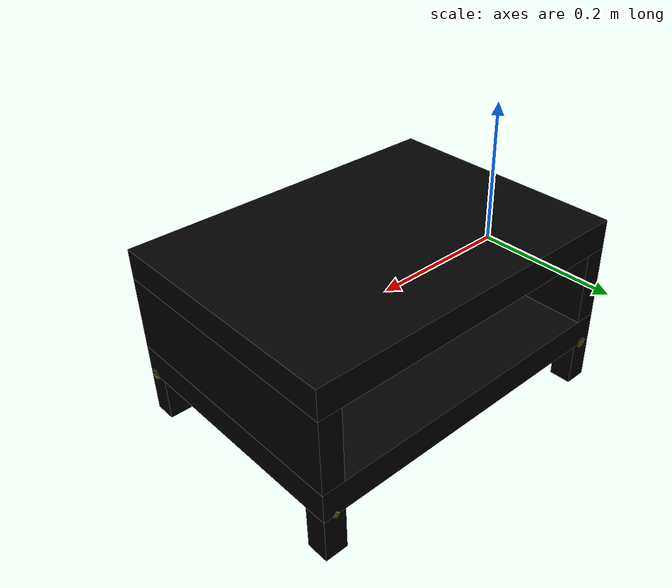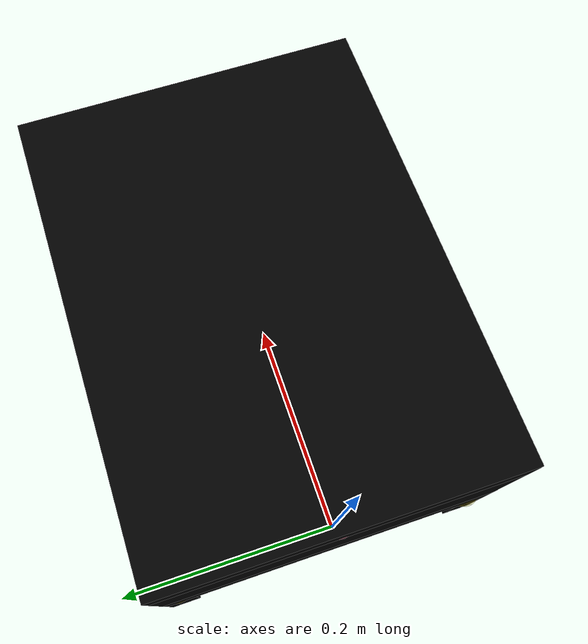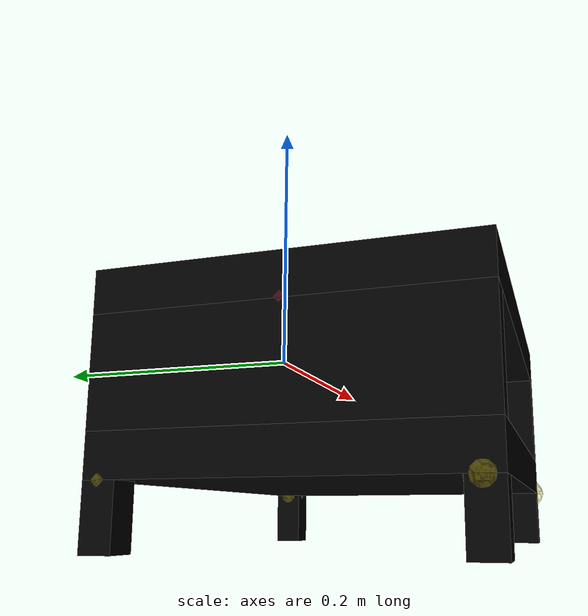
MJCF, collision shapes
<mujoco model="tvunit_lack_0829">
  <custom>
    <numeric data="0.26089 -0.240639 0.01521 0.499478 -0.500522 -0.499478 -0.500522" name="0_part0_initpos" />
    <numeric data="0.311578 0.061012 0.020513 0.0 -1.0 0.000384 0.0" name="7_part7_initpos" />
    <numeric data="-0.185525 0.337753 0.01521 0.493568 0.506351 0.493568 -0.506351" name="6_part6_initpos" />
    <numeric data="-0.195727 -0.028723 0.020067 -0.0 -0.707056 -0.707157 -0.0" name="5_part5_initpos" />
    <numeric data="0.148198 0.350031 0.01521 0.707107 0.0 -0.707107 0.0" name="4_part4_initpos" />
    <numeric data="0.552606 0.369512 0.01521 0.707107 -0.0 -0.707107 -0.0" name="3_part3_initpos" />
    <numeric data="0.424874 0.365065 0.01521 0.707106 0.000731 -0.707106 0.000731" name="2_part2_initpos" />
    <numeric data="0.283024 0.357894 0.01521 0.707107 0.0005 -0.707107 0.0005" name="1_part1_initpos" />
  </custom>
  <asset>
    <mesh file="tvunit_lack_0829/0.stl" name="part0" scale="0.0008 0.0008 0.0008" />
    <mesh file="tvunit_lack_0829/7.stl" name="part7" scale="0.0008 0.0008 0.0008" />
    <mesh file="tvunit_lack_0829/6.stl" name="part6" scale="0.0008 0.0008 0.0008" />
    <mesh file="tvunit_lack_0829/5.stl" name="part5" scale="0.0008 0.0008 0.0008" />
    <mesh file="tvunit_lack_0829/4.stl" name="part4" scale="0.0008 0.0008 0.0008" />
    <mesh file="tvunit_lack_0829/3.stl" name="part3" scale="0.0008 0.0008 0.0008" />
    <mesh file="tvunit_lack_0829/2.stl" name="part2" scale="0.0008 0.0008 0.0008" />
    <mesh file="tvunit_lack_0829/1.stl" name="part1" scale="0.0008 0.0008 0.0008" />
  </asset>
  <equality>
    <weld active="false" body1="6_part6" body2="7_part7" solimp="1 1 0.5" solref="0.01 0.3" />
    <weld active="false" body1="0_part0" body2="7_part7" solimp="1 1 0.5" solref="0.01 0.3" />
    <weld active="false" body1="7_part7" body2="3_part3" solimp="1 1 0.5" solref="0.01 0.3" />
    <weld active="false" body1="7_part7" body2="4_part4" solimp="1 1 0.5" solref="0.01 0.3" />
    <weld active="false" body1="7_part7" body2="1_part1" solimp="1 1 0.5" solref="0.01 0.3" />
    <weld active="false" body1="7_part7" body2="2_part2" solimp="1 1 0.5" solref="0.01 0.3" />
    <weld active="false" body1="6_part6" body2="5_part5" solimp="1 1 0.5" solref="0.01 0.3" />
    <weld active="false" body1="0_part0" body2="5_part5" solimp="1 1 0.5" solref="0.01 0.3" />
  </equality>
  <worldbody>
    <body name="0_part0" pos="0.0 0.0 -4.8e-10" quat="1 0 0 0">
      <geom conaffinity="0" contype="0" density="0" mesh="part0" name="0_part0_mesh" pos="0.0 0.0 0.0" rgba="0.82 0.71 0.55 1" type="mesh" />
      <site name="0_part0_horizontal_radius_site" pos="0.0 0.0 -4.8e-10" quat="1 0 0 0" rgba="0 0 0 0" size="0.016" />
      <site name="0_part0_top_site" pos="0.0 0.0 0.050800000000000005" quat="1 0 0 0" rgba="0 0 0 0" size="0.016" />
      <site name="0_part0_bottom_site" pos="0.0 0.0 -0.05080000088" quat="1 0 0 0" rgba="0 0 0 0" size="0.016" />
      <site name="0_part0_corner_site8" pos="-0.015240000000000002 0.17272 0.050800000000000005" quat="1 0 0 0" rgba="0 0 0 0" size="0.016" />
      <site name="0_part0_corner_site7" pos="0.015240000000000002 0.17272 0.050800000000000005" quat="1 0 0 0" rgba="0 0 0 0" size="0.016" />
      <site name="0_part0_corner_site6" pos="0.015240000000000002 -0.17272 0.050800000000000005" quat="1 0 0 0" rgba="0 0 0 0" size="0.016" />
      <site name="0_part0_corner_site5" pos="-0.015240000000000002 -0.17272 0.050800000000000005" quat="1 0 0 0" rgba="0 0 0 0" size="0.016" />
      <site name="0_part0_corner_site4" pos="-0.015240000000000002 0.17272 -0.05080000088" quat="1 0 0 0" rgba="0 0 0 0" size="0.016" />
      <site name="0_part0_corner_site3" pos="0.015240000000000002 0.17272 -0.05080000088" quat="1 0 0 0" rgba="0 0 0 0" size="0.016" />
      <site name="0_part0_corner_site2" pos="0.015240000000000002 -0.17272 -0.05080000088" quat="1 0 0 0" rgba="0 0 0 0" size="0.016" />
      <site name="0_part0_corner_site1" pos="-0.015240000000000002 -0.17272 -0.05080000088" quat="1 0 0 0" rgba="0 0 0 0" size="0.016" />
      <site name="sidebar-toppane,0,180,conn_site2" pos="0.0 0.0 0.052079999999999994" quat="1 0 0 0" rgba="0.9019 0.0980 0.2941 0.3" size="0.016" />
      <site name="sidebar-botpane,0,180,conn_site2" pos="0.0024000000000000002 0.0 -0.050800000000000005" quat="1 0 0 0" rgba="0.2352 0.7058 0.2941 0.3" size="0.016" />
      <geom density="50" name="noviz_collision_0_part0_1" pos="0.0 0.0 0.0" quat="1 0 0 0" rgba="0 0 0 0" size="0.015240000000000002 0.17272 0.050800000000000005" solref="0.001 1" type="box" />
    </body>
    <body name="7_part7" pos="0.21844000488000004 0.0 -0.07112000088" quat="1 0 0 0">
      <geom conaffinity="0" contype="0" density="0" mesh="part7" name="7_part7_mesh" pos="0.0 0.0 0.0" rgba="0.82 0.71 0.55 1" type="mesh" />
      <site name="7_part7_horizontal_radius_site" pos="0.0 0.0 -0.0" quat="1 0 0 0" rgba="0 0 0 0" size="0.016" />
      <site name="7_part7_top_site" pos="0.0 0.0 0.02032" quat="1 0 0 0" rgba="0 0 0 0" size="0.016" />
      <site name="7_part7_bottom_site" pos="0.0 0.0 -0.02032" quat="1 0 0 0" rgba="0 0 0 0" size="0.016" />
      <site name="7_part7_corner_site8" pos="-0.23368000488 0.17272 0.02032" quat="1 0 0 0" rgba="0 0 0 0" size="0.016" />
      <site name="7_part7_corner_site7" pos="0.23368000488 0.17272 0.02032" quat="1 0 0 0" rgba="0 0 0 0" size="0.016" />
      <site name="7_part7_corner_site6" pos="0.23368000488 -0.17272 0.02032" quat="1 0 0 0" rgba="0 0 0 0" size="0.016" />
      <site name="7_part7_corner_site5" pos="-0.23368000488 -0.17272 0.02032" quat="1 0 0 0" rgba="0 0 0 0" size="0.016" />
      <site name="7_part7_corner_site4" pos="-0.23368000488 0.17272 -0.02032" quat="1 0 0 0" rgba="0 0 0 0" size="0.016" />
      <site name="7_part7_corner_site3" pos="0.23368000488 0.17272 -0.02032" quat="1 0 0 0" rgba="0 0 0 0" size="0.016" />
      <site name="7_part7_corner_site2" pos="0.23368000488 -0.17272 -0.02032" quat="1 0 0 0" rgba="0 0 0 0" size="0.016" />
      <site name="7_part7_corner_site1" pos="-0.23368000488 -0.17272 -0.02032" quat="1 0 0 0" rgba="0 0 0 0" size="0.016" />
      <site name="botpane-sidebar,0,180,conn_site2" pos="-0.21604 0.0 0.02032" quat="1 0 0 0" rgba="0.2352 0.7058 0.2941 0.3" size="0.016" />
      <site name="botpane-sidebar,0,180,conn_site1" pos="0.2174 0.0 0.02032" quat="1 0 0 0" rgba="0.2352 0.7058 0.2941 0.3" size="0.016" />
      <site name="botpane-leg,0,90,180,270,conn_site6" pos="-0.2214 -0.15568 -0.02032" quat="1 0 0 0" rgba="1.0 0.8823 0.0980 0.3" size="0.016" />
      <site name="botpane-leg,0,90,180,270,conn_site5" pos="-0.21868000000000004 0.15880000000000002 -0.02032" quat="1 0 0 0" rgba="1.0 0.8823 0.0980 0.3" size="0.016" />
      <site name="botpane-leg,0,90,180,270,conn_site4" pos="0.21628000000000003 0.15752000000000002 -0.02032" quat="1 0 0 0" rgba="1.0 0.8823 0.0980 0.3" size="0.016" />
      <site name="botpane-leg,0,90,180,270,conn_site3" pos="0.21964000000000003 -0.16408 -0.02032" quat="1 0 0 0" rgba="1.0 0.8823 0.0980 0.3" size="0.016" />
      <geom density="50" name="noviz_collision_7_part7_1" pos="0.0 0.0 0.000111472" quat="1 0 0 0" rgba="0 0 0 0" size="0.23368000000000003 0.17272 0.020431472000000003" solref="0.001 1" type="box" />
    </body>
    <body name="6_part6" pos="0.43687999512 0.0 -4.8e-10" quat="1 0 0 0">
      <geom conaffinity="0" contype="0" density="0" mesh="part6" name="6_part6_mesh" pos="0.0 0.0 0.0" rgba="0.82 0.71 0.55 1" type="mesh" />
      <site name="6_part6_horizontal_radius_site" pos="0.0 0.0 -4.8e-10" quat="1 0 0 0" rgba="0 0 0 0" size="0.016" />
      <site name="6_part6_top_site" pos="0.0 0.0 0.050800000000000005" quat="1 0 0 0" rgba="0 0 0 0" size="0.016" />
      <site name="6_part6_bottom_site" pos="0.0 0.0 -0.05080000088" quat="1 0 0 0" rgba="0 0 0 0" size="0.016" />
      <site name="6_part6_corner_site8" pos="-0.015240014640000002 0.17272 0.050800000000000005" quat="1 0 0 0" rgba="0 0 0 0" size="0.016" />
      <site name="6_part6_corner_site7" pos="0.015240014640000002 0.17272 0.050800000000000005" quat="1 0 0 0" rgba="0 0 0 0" size="0.016" />
      <site name="6_part6_corner_site6" pos="0.015240014640000002 -0.17272 0.050800000000000005" quat="1 0 0 0" rgba="0 0 0 0" size="0.016" />
      <site name="6_part6_corner_site5" pos="-0.015240014640000002 -0.17272 0.050800000000000005" quat="1 0 0 0" rgba="0 0 0 0" size="0.016" />
      <site name="6_part6_corner_site4" pos="-0.015240014640000002 0.17272 -0.05080000088" quat="1 0 0 0" rgba="0 0 0 0" size="0.016" />
      <site name="6_part6_corner_site3" pos="0.015240014640000002 0.17272 -0.05080000088" quat="1 0 0 0" rgba="0 0 0 0" size="0.016" />
      <site name="6_part6_corner_site2" pos="0.015240014640000002 -0.17272 -0.05080000088" quat="1 0 0 0" rgba="0 0 0 0" size="0.016" />
      <site name="6_part6_corner_site1" pos="-0.015240014640000002 -0.17272 -0.05080000088" quat="1 0 0 0" rgba="0 0 0 0" size="0.016" />
      <site name="sidebar-toppane,0,180,conn_site1" pos="-0.001039992 0.0 0.052079999999999994" quat="1 0 0 0" rgba="0.9019 0.0980 0.2941 0.3" size="0.016" />
      <site name="sidebar-botpane,0,180,conn_site1" pos="-0.001039992 0.0 -0.050800000000000005" quat="1 0 0 0" rgba="0.2352 0.7058 0.2941 0.3" size="0.016" />
      <geom density="50" name="noviz_collision_6_part6_0" pos="0.0 0.0 0.0" quat="1 0 0 0" rgba="0 0 0 0" size="0.015239992000000003 0.17272 0.050800000000000005" solref="0.001 1" type="box" />
    </body>
    <body name="5_part5" pos="0.21844000488000004 0.0 0.07112000168" quat="1 0 0 0">
      <geom conaffinity="0" contype="0" density="0" mesh="part5" name="5_part5_mesh" pos="0.0 0.0 0.0" rgba="0.82 0.71 0.55 1" type="mesh" />
      <site name="5_part5_horizontal_radius_site" pos="0.0 0.0 1.6000000000000002e-10" quat="1 0 0 0" rgba="0 0 0 0" size="0.016" />
      <site name="5_part5_top_site" pos="0.0 0.0 0.02032000272" quat="1 0 0 0" rgba="0 0 0 0" size="0.016" />
      <site name="5_part5_bottom_site" pos="0.0 0.0 -0.020320002480000002" quat="1 0 0 0" rgba="0 0 0 0" size="0.016" />
      <site name="5_part5_corner_site8" pos="-0.23368000488 0.17272 0.02032000272" quat="1 0 0 0" rgba="0 0 0 0" size="0.016" />
      <site name="5_part5_corner_site7" pos="0.23368000488 0.17272 0.02032000272" quat="1 0 0 0" rgba="0 0 0 0" size="0.016" />
      <site name="5_part5_corner_site6" pos="0.23368000488 -0.17272 0.02032000272" quat="1 0 0 0" rgba="0 0 0 0" size="0.016" />
      <site name="5_part5_corner_site5" pos="-0.23368000488 -0.17272 0.02032000272" quat="1 0 0 0" rgba="0 0 0 0" size="0.016" />
      <site name="5_part5_corner_site4" pos="-0.23368000488 0.17272 -0.020320002480000002" quat="1 0 0 0" rgba="0 0 0 0" size="0.016" />
      <site name="5_part5_corner_site3" pos="0.23368000488 0.17272 -0.020320002480000002" quat="1 0 0 0" rgba="0 0 0 0" size="0.016" />
      <site name="5_part5_corner_site2" pos="0.23368000488 -0.17272 -0.020320002480000002" quat="1 0 0 0" rgba="0 0 0 0" size="0.016" />
      <site name="5_part5_corner_site1" pos="-0.23368000488 -0.17272 -0.020320002480000002" quat="1 0 0 0" rgba="0 0 0 0" size="0.016" />
      <site name="toppane-sidebar,0,180,conn_site2" pos="-0.21604 0.0 -0.01904" quat="1 0 0 0" rgba="0.9019 0.0980 0.2941 0.3" size="0.016" />
      <site name="toppane-sidebar,0,180,conn_site1" pos="0.21604 0.0 -0.01904" quat="1 0 0 0" rgba="0.9019 0.0980 0.2941 0.3" size="0.016" />
      <geom density="50" name="noviz_collision_5_part5_0" pos="0.0 0.0 -0.000111472" quat="1 0 0 0" rgba="0 0 0 0" size="0.23368000000000003 0.17272 0.020208536000000003" solref="0.001 1" type="box" />
    </body>
    <body name="4_part4" pos="0.0 0.15748 -0.12192000087999999" quat="1 0 0 0">
      <geom conaffinity="0" contype="0" density="0" mesh="part4" name="4_part4_mesh" pos="0.0 0.0 0.0" rgba="0.82 0.71 0.55 1" type="mesh" />
      <site name="4_part4_horizontal_radius_site" pos="0.0 -0.0 0.0" quat="1 0 0 0" rgba="0 0 0 0" size="0.016" />
      <site name="4_part4_top_site" pos="0.0 0.0 0.030480000000000004" quat="1 0 0 0" rgba="0 0 0 0" size="0.016" />
      <site name="4_part4_bottom_site" pos="0.0 0.0 -0.030480000000000004" quat="1 0 0 0" rgba="0 0 0 0" size="0.016" />
      <site name="4_part4_corner_site8" pos="-0.015240000000000002 0.015240000000000002 0.030480000000000004" quat="1 0 0 0" rgba="0 0 0 0" size="0.016" />
      <site name="4_part4_corner_site7" pos="0.015240000000000002 0.015240000000000002 0.030480000000000004" quat="1 0 0 0" rgba="0 0 0 0" size="0.016" />
      <site name="4_part4_corner_site6" pos="0.015240000000000002 -0.015240000000000002 0.030480000000000004" quat="1 0 0 0" rgba="0 0 0 0" size="0.016" />
      <site name="4_part4_corner_site5" pos="-0.015240000000000002 -0.015240000000000002 0.030480000000000004" quat="1 0 0 0" rgba="0 0 0 0" size="0.016" />
      <site name="4_part4_corner_site4" pos="-0.015240000000000002 0.015240000000000002 -0.030480000000000004" quat="1 0 0 0" rgba="0 0 0 0" size="0.016" />
      <site name="4_part4_corner_site3" pos="0.015240000000000002 0.015240000000000002 -0.030480000000000004" quat="1 0 0 0" rgba="0 0 0 0" size="0.016" />
      <site name="4_part4_corner_site2" pos="0.015240000000000002 -0.015240000000000002 -0.030480000000000004" quat="1 0 0 0" rgba="0 0 0 0" size="0.016" />
      <site name="4_part4_corner_site1" pos="-0.015240000000000002 -0.015240000000000002 -0.030480000000000004" quat="1 0 0 0" rgba="0 0 0 0" size="0.016" />
      <site name="leg-botpane,0,90,180,270,conn_site5" pos="-0.00023999999999999998 0.001319992 0.030479992" quat="1 0 0 0" rgba="1.0 0.8823 0.0980 0.3" size="0.016" />
      <geom density="50" name="noviz_collision_4_part4_0" pos="0.0 0.0 0.0" quat="1 0 0 0" rgba="0 0 0 0" size="0.015240000000000002 0.015240000000000002 0.030480008" solref="0.001 1" type="box" />
    </body>
    <body name="3_part3" pos="0.0 -0.15748 -0.12192000087999999" quat="1 0 0 0">
      <geom conaffinity="0" contype="0" density="0" mesh="part3" name="3_part3_mesh" pos="0.0 0.0 0.0" rgba="0.82 0.71 0.55 1" type="mesh" />
      <site name="3_part3_horizontal_radius_site" pos="0.0 0.0 0.0" quat="1 0 0 0" rgba="0 0 0 0" size="0.016" />
      <site name="3_part3_top_site" pos="0.0 0.0 0.030480000000000004" quat="1 0 0 0" rgba="0 0 0 0" size="0.016" />
      <site name="3_part3_bottom_site" pos="0.0 0.0 -0.030480000000000004" quat="1 0 0 0" rgba="0 0 0 0" size="0.016" />
      <site name="3_part3_corner_site8" pos="-0.015240000000000002 0.015240000000000002 0.030480000000000004" quat="1 0 0 0" rgba="0 0 0 0" size="0.016" />
      <site name="3_part3_corner_site7" pos="0.015240000000000002 0.015240000000000002 0.030480000000000004" quat="1 0 0 0" rgba="0 0 0 0" size="0.016" />
      <site name="3_part3_corner_site6" pos="0.015240000000000002 -0.015240000000000002 0.030480000000000004" quat="1 0 0 0" rgba="0 0 0 0" size="0.016" />
      <site name="3_part3_corner_site5" pos="-0.015240000000000002 -0.015240000000000002 0.030480000000000004" quat="1 0 0 0" rgba="0 0 0 0" size="0.016" />
      <site name="3_part3_corner_site4" pos="-0.015240000000000002 0.015240000000000002 -0.030480000000000004" quat="1 0 0 0" rgba="0 0 0 0" size="0.016" />
      <site name="3_part3_corner_site3" pos="0.015240000000000002 0.015240000000000002 -0.030480000000000004" quat="1 0 0 0" rgba="0 0 0 0" size="0.016" />
      <site name="3_part3_corner_site2" pos="0.015240000000000002 -0.015240000000000002 -0.030480000000000004" quat="1 0 0 0" rgba="0 0 0 0" size="0.016" />
      <site name="3_part3_corner_site1" pos="-0.015240000000000002 -0.015240000000000002 -0.030480000000000004" quat="1 0 0 0" rgba="0 0 0 0" size="0.016" />
      <site name="leg-botpane,0,90,180,270,conn_site6" pos="-0.0029600000000000004 0.0018000000000000004 0.030479992" quat="1 0 0 0" rgba="1.0 0.8823 0.0980 0.3" size="0.016" />
      <geom density="50" name="noviz_collision_3_part3_0" pos="0.0 0.0 0.0" quat="1 0 0 0" rgba="0 0 0 0" size="0.015240000000000002 0.015239992000000003 0.030480008" solref="0.001 1" type="box" />
    </body>
    <body name="2_part2" pos="0.43687999512 -0.15748 -0.12192000087999999" quat="1 0 0 0">
      <geom conaffinity="0" contype="0" density="0" mesh="part2" name="2_part2_mesh" pos="0.0 0.0 0.0" rgba="0.82 0.71 0.55 1" type="mesh" />
      <site name="2_part2_horizontal_radius_site" pos="0.0 0.0 0.0" quat="1 0 0 0" rgba="0 0 0 0" size="0.016" />
      <site name="2_part2_top_site" pos="0.0 0.0 0.030480000000000004" quat="1 0 0 0" rgba="0 0 0 0" size="0.016" />
      <site name="2_part2_bottom_site" pos="0.0 0.0 -0.030480000000000004" quat="1 0 0 0" rgba="0 0 0 0" size="0.016" />
      <site name="2_part2_corner_site8" pos="-0.015240014640000002 0.015240000000000002 0.030480000000000004" quat="1 0 0 0" rgba="0 0 0 0" size="0.016" />
      <site name="2_part2_corner_site7" pos="0.015240014640000002 0.015240000000000002 0.030480000000000004" quat="1 0 0 0" rgba="0 0 0 0" size="0.016" />
      <site name="2_part2_corner_site6" pos="0.015240014640000002 -0.015240000000000002 0.030480000000000004" quat="1 0 0 0" rgba="0 0 0 0" size="0.016" />
      <site name="2_part2_corner_site5" pos="-0.015240014640000002 -0.015240000000000002 0.030480000000000004" quat="1 0 0 0" rgba="0 0 0 0" size="0.016" />
      <site name="2_part2_corner_site4" pos="-0.015240014640000002 0.015240000000000002 -0.030480000000000004" quat="1 0 0 0" rgba="0 0 0 0" size="0.016" />
      <site name="2_part2_corner_site3" pos="0.015240014640000002 0.015240000000000002 -0.030480000000000004" quat="1 0 0 0" rgba="0 0 0 0" size="0.016" />
      <site name="2_part2_corner_site2" pos="0.015240014640000002 -0.015240000000000002 -0.030480000000000004" quat="1 0 0 0" rgba="0 0 0 0" size="0.016" />
      <site name="2_part2_corner_site1" pos="-0.015240014640000002 -0.015240000000000002 -0.030480000000000004" quat="1 0 0 0" rgba="0 0 0 0" size="0.016" />
      <site name="leg-botpane,0,90,180,270,conn_site3" pos="0.0012000000000000001 -0.006600000000000001 0.030479992" quat="1 0 0 0" rgba="1.0 0.8823 0.0980 0.3" size="0.016" />
      <geom density="50" name="noviz_collision_2_part2_0" pos="0.0 0.0 0.0" quat="1 0 0 0" rgba="0 0 0 0" size="0.015239992000000003 0.015239992000000003 0.030480008" solref="0.001 1" type="box" />
    </body>
    <body name="1_part1" pos="0.43687999512 0.15748 -0.12192000087999999" quat="1 0 0 0">
      <geom conaffinity="0" contype="0" density="0" mesh="part1" name="1_part1_mesh" pos="0.0 0.0 0.0" rgba="0.82 0.71 0.55 1" type="mesh" />
      <site name="1_part1_horizontal_radius_site" pos="0.0 -0.0 0.0" quat="1 0 0 0" rgba="0 0 0 0" size="0.016" />
      <site name="1_part1_top_site" pos="0.0 0.0 0.030480000000000004" quat="1 0 0 0" rgba="0 0 0 0" size="0.016" />
      <site name="1_part1_bottom_site" pos="0.0 0.0 -0.030480000000000004" quat="1 0 0 0" rgba="0 0 0 0" size="0.016" />
      <site name="1_part1_corner_site8" pos="-0.015240014640000002 0.015240000000000002 0.030480000000000004" quat="1 0 0 0" rgba="0 0 0 0" size="0.016" />
      <site name="1_part1_corner_site7" pos="0.015240014640000002 0.015240000000000002 0.030480000000000004" quat="1 0 0 0" rgba="0 0 0 0" size="0.016" />
      <site name="1_part1_corner_site6" pos="0.015240014640000002 -0.015240000000000002 0.030480000000000004" quat="1 0 0 0" rgba="0 0 0 0" size="0.016" />
      <site name="1_part1_corner_site5" pos="-0.015240014640000002 -0.015240000000000002 0.030480000000000004" quat="1 0 0 0" rgba="0 0 0 0" size="0.016" />
      <site name="1_part1_corner_site4" pos="-0.015240014640000002 0.015240000000000002 -0.030480000000000004" quat="1 0 0 0" rgba="0 0 0 0" size="0.016" />
      <site name="1_part1_corner_site3" pos="0.015240014640000002 0.015240000000000002 -0.030480000000000004" quat="1 0 0 0" rgba="0 0 0 0" size="0.016" />
      <site name="1_part1_corner_site2" pos="0.015240014640000002 -0.015240000000000002 -0.030480000000000004" quat="1 0 0 0" rgba="0 0 0 0" size="0.016" />
      <site name="1_part1_corner_site1" pos="-0.015240014640000002 -0.015240000000000002 -0.030480000000000004" quat="1 0 0 0" rgba="0 0 0 0" size="0.016" />
      <site name="leg-botpane,0,90,180,270,conn_site4" pos="-0.0021599600000000003 3.9992000000000006e-05 0.030479992" quat="1 0 0 0" rgba="1.0 0.8823 0.0980 0.3" size="0.016" />
      <geom density="50" name="noviz_collision_1_part1_0" pos="0.0 0.0 0.0" quat="1 0 0 0" rgba="0 0 0 0" size="0.015239992000000003 0.015240000000000002 0.030480008" solref="0.001 1" type="box" />
    </body>
  </worldbody>
  <actuator />
  <sensor />
  <contact />
  <default />
</mujoco>
